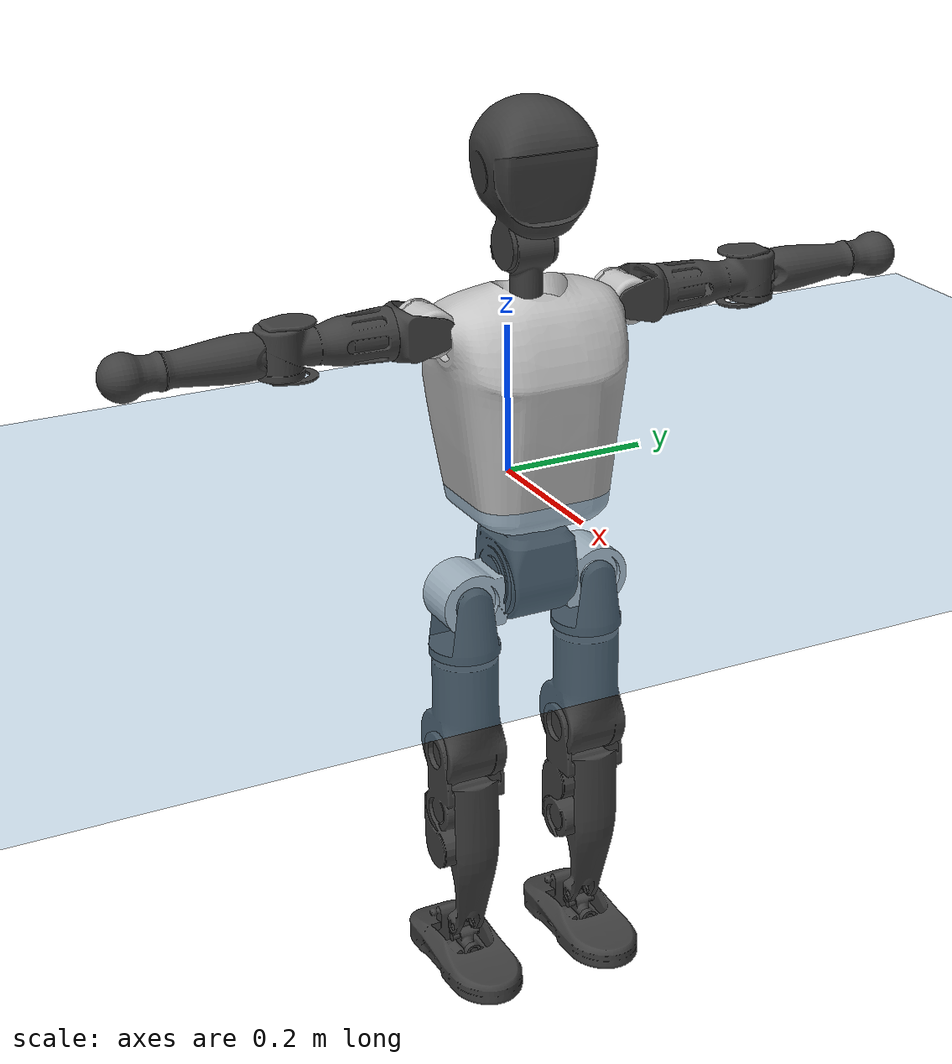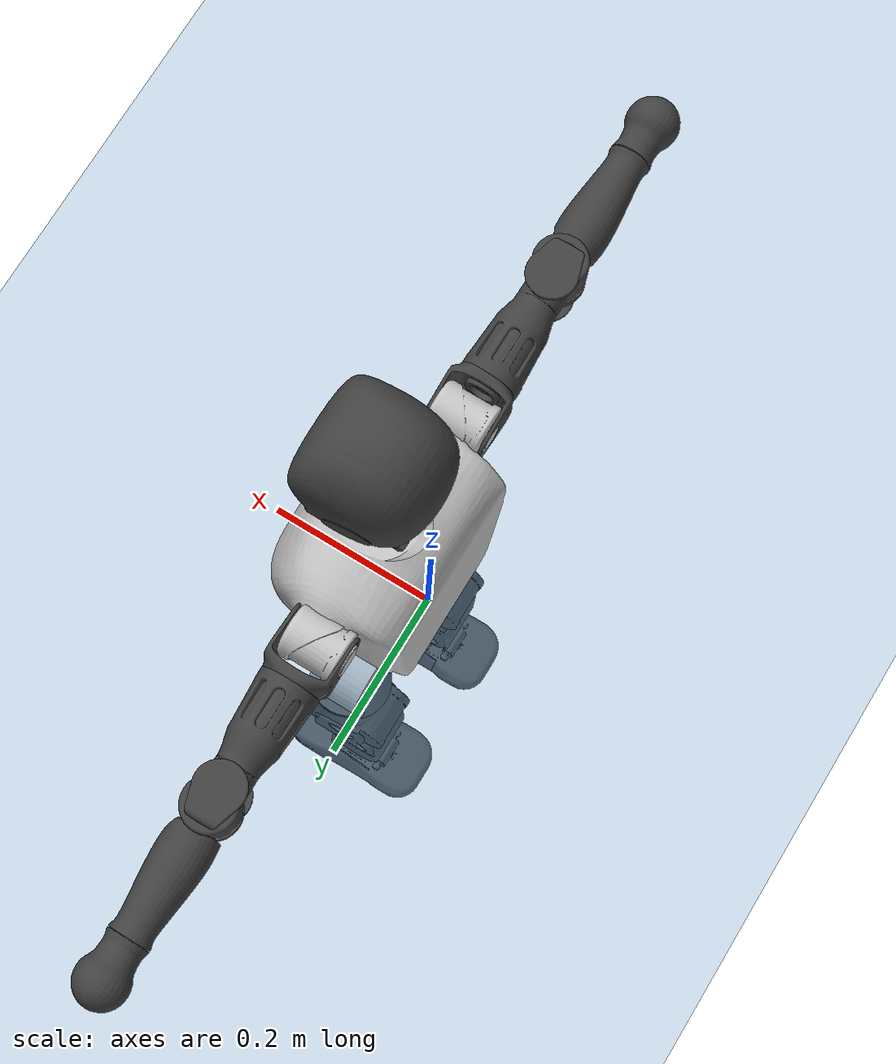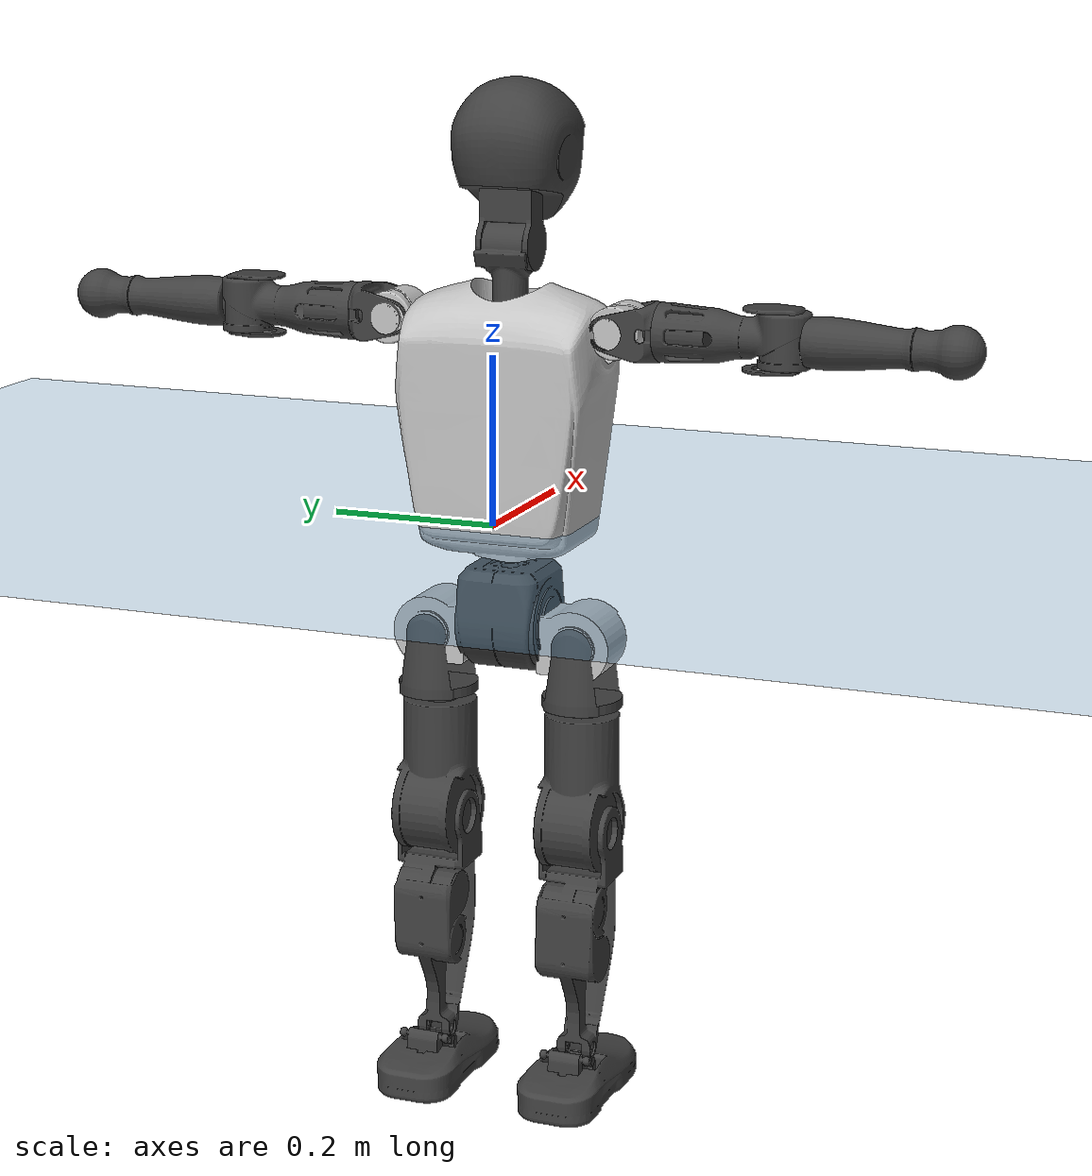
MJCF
<mujoco model="T1">
  <compiler angle="radian" assetdir="assets" balanceinertia="true" inertiafromgeom="false"/>

  <option timestep="0.005" density="1.2" viscosity="2e-05"/>

  <size nkey="1"/>

  <visual>
    <quality shadowsize="8192"/>
    <map shadowclip="0.5"/>
  </visual>

  <default>
    <default class="/">
      <joint armature="0.01" damping="0.01" frictionloss="0.1"/>
      <geom contype="0" conaffinity="0" group="1" solref="-1000 -80"/>
      <site size="0.01 0.005 0.005" group="5"/>
      <general forcelimited="true" biastype="affine" gainprm="25" biasprm="0 -25 -0.6"/>
      <default class="t1">
        <geom rgba="0.25 0.25 0.25 1"/>
        <default class="visual">
          <geom type="mesh" group="2"/>
        </default>
        <default class="collision">
          <geom group="3"/>
        </default>
        <default class="foot">
          <geom size="0.1115 0.05 0.015" type="box" condim="6" group="4" priority="1" solimp="0.015 1 0.015"/>
        </default>
        <default class="reward_collision_sphere">
          <geom group="5" rgba="1 0 0 1"/>
        </default>
      </default>
    </default>
  </default>

  <asset>
    <texture type="skybox" colorspace="auto" name="//unnamed_texture_0" builtin="gradient" rgb1="0.95 0.95 0.95" rgb2="0.95 0.95 0.95" width="100" height="600"/>
    <texture type="2d" colorspace="auto" name="texplane" builtin="checker" rgb1="0.345 0.575 0.748" rgb2="0.345 0.575 0.748" markrgb="1 1 1" width="512" height="512"/>
    <material name="MatPlane" class="/" texture="texplane" texuniform="true" texrepeat="2 2" specular="0.9"/>
    <mesh name="Trunk" class="/" file="Trunk.stl"/>
    <mesh name="H1" class="/" file="H1.stl"/>
    <mesh name="H2" class="/" file="H2.stl"/>
    <mesh name="AL1" class="/" file="AL1.stl"/>
    <mesh name="AL2" class="/" file="AL2.stl"/>
    <mesh name="AL3" class="/" file="AL3.stl"/>
    <mesh name="left_hand_link" class="/" file="left_hand_link.stl"/>
    <mesh name="AR1" class="/" file="AR1.stl"/>
    <mesh name="AR2" class="/" file="AR2.stl"/>
    <mesh name="AR3" class="/" file="AR3.stl"/>
    <mesh name="right_hand_link" class="/" file="right_hand_link.stl"/>
    <mesh name="Waist" class="/" file="Waist.stl"/>
    <mesh name="Hip_Pitch_Left" class="/" file="Hip_Pitch_Left.stl"/>
    <mesh name="Hip_Roll_Left" class="/" file="Hip_Roll_Left.stl"/>
    <mesh name="Hip_Yaw_Left" class="/" file="Hip_Yaw_Left.stl"/>
    <mesh name="Shank_Left" class="/" file="Shank_Left.stl"/>
    <mesh name="Ankle_Cross_Left" class="/" file="Ankle_Cross_Left.stl"/>
    <mesh name="left_foot_link" class="/" file="left_foot_link.stl"/>
    <mesh name="Hip_Pitch_Right" class="/" file="Hip_Pitch_Right.stl"/>
    <mesh name="Hip_Roll_Right" class="/" file="Hip_Roll_Right.stl"/>
    <mesh name="Hip_Yaw_Right" class="/" file="Hip_Yaw_Right.stl"/>
    <mesh name="Shank_Right" class="/" file="Shank_Right.stl"/>
    <mesh name="Ankle_Cross_Right" class="/" file="Ankle_Cross_Right.stl"/>
    <mesh name="right_foot_link" class="/" file="right_foot_link.stl"/>
  </asset>

  <worldbody>
    <geom name="floor" class="/" size="100 100 0.125" type="plane" group="0" material="MatPlane"/>
    <light name="toplight_shadow" class="/" pos="0 0 5" dir="0.0990148 0.0990148 -0.990148" type="directional" ambient="0.04 0.04 0.04" diffuse="0.55 0.55 0.55" specular="0.12 0.12 0.12"/>
    <light name="toplight_fill" class="/" pos="0 0 5" dir="0.0990148 0.0990148 -0.990148" type="directional" castshadow="false" ambient="0.04 0.04 0.04" diffuse="0.3 0.3 0.3" specular="0.08 0.08 0.08"/>
    <body name="trunk" childclass="t1" pos="0.000450975 0.000551744 -0.000829901" quat="1 0.000387841 0.00021159 3.77844e-05">
      <inertial pos="0.0454923 -0.000286621 0.11108" quat="0.999963 -0.00152238 -0.00837493 0.00133398" mass="9.11114" diaginertia="0.0362237 0.0379431 0.0750368"/>
      <joint name="//unnamed_joint_0" type="free" armature="0" damping="0" frictionloss="0"/>
      <geom name="//unnamed_geom_1" class="visual" rgba="0.76 0.76 0.76 1" mesh="Trunk"/>
      <geom name="//unnamed_geom_2" class="collision" size="0.0690271 0.0920362 0.138054" pos="0.0498451 0 0.127475" type="box"/>
      <geom name="//unnamed_geom_3" class="reward_collision_sphere" size="0.105842" pos="0.0498451 0 0.106229"/>
      <geom name="//unnamed_geom_4" class="reward_collision_sphere" size="0.0138054" pos="0.0498451 0.0737834 0"/>
      <geom name="//unnamed_geom_5" class="reward_collision_sphere" size="0.0138054" pos="0.0498451 -0.0737834 0"/>
      <geom name="//unnamed_geom_6" class="reward_collision_sphere" size="0.0138054" pos="0.0498451 0.0928803 0.191213"/>
      <geom name="//unnamed_geom_7" class="reward_collision_sphere" size="0.0138054" pos="0.0498451 -0.0928803 0.191213"/>
      <site name="imu" pos="0.00448287 0.000363788 -0.00118306" size="0.00920362"/>
      <camera name="track" pos="0 -1.73608 0" quat="0.707107 0.707107 0 0" mode="trackcom"/>
      <camera name="ego_camera" pos="0.101352 0 0.446163" quat="-0.5 -0.5 0.5 0.5"/>
      <body name="H1" pos="0.0517056 -0.000616922 0.257733" quat="1 -0.000217713 -3.68739e-05 -0.000359565">
        <inertial pos="-0.00169774 -0.00163961 0.0600876" quat="0.762316 -0.0163129 0.00278484 0.646993" mass="0.349372" diaginertia="9.66644e-05 0.000109653 0.000206303"/>
        <joint name="AAHead_yaw" pos="0 0 0" axis="-0.00013577 -0.000154947 1" range="-1.55258 1.57934" armature="0.00883767" damping="0.00812192" frictionloss="0.0957479"/>
        <geom name="//unnamed_geom_8" class="visual" mesh="H1"/>
        <body name="H2" pos="-0.00101934 -0.000636443 0.0656002" quat="1 -1.83398e-05 -3.10787e-06 -8.72792e-06">
          <inertial pos="0.00570632 0.000123517 0.10477" quat="0.988505 0.106951 -0.0722634 -0.0787175" mass="0.496131" diaginertia="0.000808925 0.000946675 0.0023457"/>
          <joint name="Head_pitch" pos="0 0 0" axis="-0.000651255 -0.999997 0.00244896" range="-1.23024 0.33487" armature="0.00942979" damping="0.00585833" frictionloss="0.0933032"/>
          <geom name="//unnamed_geom_9" class="visual" mesh="H2"/>
          <geom name="//unnamed_geom_10" class="collision" size="0.0736289" pos="0.00830751 0 0.116852"/>
          <geom name="//unnamed_geom_11" class="reward_collision_sphere" size="0.0828325" pos="0.016615 0 0.106229"/>
        </body>
      </body>
      <body name="AL1" pos="0.0484108 0.0934598 0.233243" quat="1 7.32898e-05 0.000596744 -0.000131373">
        <inertial pos="-0.00048766 0.0391461 -0.000579928" quat="0.504446 0.495173 -0.503841 0.49647" mass="0.418618" diaginertia="0.000548611 0.000647114 0.00039893"/>
        <joint name="Left_Shoulder_Pitch" pos="0 0 0" axis="-0.000897807 0.999999 0.000608691" range="-3.30853 1.2275" armature="0.00903216" damping="0.00506976" frictionloss="0.0931119"/>
        <geom name="//unnamed_geom_12" class="visual" rgba="0.76 0.76 0.76 1" mesh="AL1"/>
        <body name="AL2" pos="0.000875857 0.0419521 0.00069225" quat="1 -0.000130125 0.000420743 0.000168905">
          <inertial pos="0.00287147 0.0320061 -0.000179198" quat="0.488045 0.511711 -0.487945 0.511736" mass="0.125767" diaginertia="0.000158777 0.000171807 0.000240536"/>
          <joint name="Left_Shoulder_Roll" pos="0 0 0" axis="-1 -2.59943e-05 -0.000115506" range="-1.57189 1.73438" armature="0.00940646" damping="0.00322337" frictionloss="0.0919725"/>
          <geom name="//unnamed_geom_13" class="visual" mesh="AL2"/>
          <body name="AL3" pos="0.000107449 0.0536782 -0.000167254" quat="1 7.40482e-06 -1.60866e-05 -1.25131e-05">
            <inertial pos="-0.000207708 0.0744613 2.08507e-07" quat="0.709201 0.705004 0.000628137 0.00174416" mass="0.812486" diaginertia="0.00514592 0.00634579 0.000841464"/>
            <joint name="Left_Elbow_Pitch" pos="0 0 0" axis="0.00140681 -0.999994 -0.00309716" range="-2.25569 2.2584" armature="0.00928516" damping="0.00372767" frictionloss="0.0887914"/>
            <geom name="//unnamed_geom_14" class="visual" mesh="AL3"/>
            <geom name="//unnamed_geom_15" class="collision" size="0.0276108 0.0690271" pos="0 0.043402 0" quat="0.707105 0.707108 0 0" type="cylinder"/>
            <geom name="//unnamed_geom_16" class="reward_collision_sphere" size="0.033133"/>
            <body name="left_hand_link" pos="-0.000327114 0.128217 0.000384674" quat="1 0.000154732 -0.000432357 0.000111871">
              <inertial pos="-6.68753e-05 0.0954015 0.000926482" quat="0.708025 0.706187 -0.000269333 0.000620774" mass="0.252185" diaginertia="0.00319869 0.00398538 0.000292312"/>
              <joint name="Left_Elbow_Yaw" pos="0 0 0" axis="0.000527949 -0.00206353 0.999998" range="-2.44352 0.00303289" armature="0.00912006" damping="0.0110164" frictionloss="0.0879362"/>
              <geom name="//unnamed_geom_17" class="visual" mesh="left_hand_link"/>
              <geom name="//unnamed_geom_18" class="collision" size="0.0276108 0.0805316" pos="0 0.112845 0" quat="0.707105 0.707108 0 0" type="cylinder"/>
              <geom name="//unnamed_geom_19" class="reward_collision_sphere" size="0.0460181"/>
              <geom name="//unnamed_geom_20" class="reward_collision_sphere" size="0.0322127" pos="0 0.0954844 0"/>
              <geom name="//unnamed_geom_21" class="reward_collision_sphere" size="0.0322127" pos="0 0.186629 0"/>
            </body>
          </body>
        </body>
      </body>
      <body name="AR1" pos="0.0469574 -0.0918731 0.23247" quat="1 -6.83399e-05 0.000529815 -0.000266909">
        <inertial pos="-0.00129976 -0.0393375 3.35779e-05" quat="0.504392 0.49638 -0.503421 0.495745" mass="0.413096" diaginertia="0.000548535 0.000639301 0.000394894"/>
        <joint name="Right_Shoulder_Pitch" pos="0 0 0" axis="0.00158548 -0.999998 -0.00141625" stiffness="0.000960205" range="-1.23109 3.3083" armature="0.00963005" damping="0.00592202" frictionloss="0.094254"/>
        <geom name="//unnamed_geom_22" class="visual" rgba="0.76 0.76 0.76 1" mesh="AR1"/>
        <body name="AR2" pos="-0.00105708 -0.0405787 3.17838e-05" quat="1 2.21204e-05 -3.21747e-06 -9.2361e-07">
          <inertial pos="0.00297074 -0.0329965 0.000205203" quat="0.515111 0.485924 -0.510058 0.488241" mass="0.123876" diaginertia="0.000160888 0.000170115 0.000240565"/>
          <joint name="Right_Shoulder_Roll" pos="0 0 0" axis="-0.999989 0.00350833 -0.00310391" range="-1.74406 1.56992" armature="0.00920929" damping="0.00549989" frictionloss="0.0919431"/>
          <geom name="//unnamed_geom_23" class="visual" mesh="AR2"/>
          <body name="AR3" pos="-0.00114404 -0.0527234 0.000882904" quat="1 0.000104766 -3.5378e-05 6.3426e-05">
            <inertial pos="-0.000677623 -0.0733171 -0.00020895" quat="0.70766 0.706554 0.00024695 0.000122643" mass="0.791302" diaginertia="0.00508582 0.00623457 0.000829764"/>
            <joint name="Right_Elbow_Pitch" pos="0 0 0" axis="0.00060836 0.999999 -0.0015285" range="-2.26743 2.2705" armature="0.00927866" damping="0.00876651" frictionloss="0.091781"/>
            <geom name="//unnamed_geom_24" class="visual" mesh="AR3"/>
            <geom name="//unnamed_geom_25" class="collision" size="0.0276108 0.0690271" pos="0 -0.043402 0" quat="0.707105 0.707108 0 0" type="cylinder"/>
            <geom name="//unnamed_geom_26" class="reward_collision_sphere" size="0.033133"/>
            <body name="right_hand_link" pos="-0.000243301 -0.127588 -0.000460766" quat="1 0.000312033 -5.17116e-05 5.93411e-05">
              <inertial pos="-0.000902613 -0.0947519 0.000339061" quat="0.705962 0.708246 -0.00238983 -8.25533e-05" mass="0.25816" diaginertia="0.00322279 0.00400479 0.00028721"/>
              <joint name="Right_Elbow_Yaw" pos="0 0 0" axis="0.0029497 0.00422151 0.999987" range="-0.00251197 2.44932" armature="0.00898609" damping="0.00814247" frictionloss="0.0931662"/>
              <geom name="//unnamed_geom_27" class="visual" mesh="right_hand_link"/>
              <geom name="//unnamed_geom_28" class="collision" size="0.0276108 0.0805316" pos="0 -0.112845 0" quat="0.707105 0.707108 0 0" type="cylinder"/>
              <geom name="//unnamed_geom_29" class="reward_collision_sphere" size="0.0460181"/>
              <geom name="//unnamed_geom_30" class="reward_collision_sphere" size="0.0322127" pos="0 -0.0954844 0"/>
              <geom name="//unnamed_geom_31" class="reward_collision_sphere" size="0.0322127" pos="0 -0.186629 0"/>
            </body>
          </body>
        </body>
      </body>
      <body name="Waist" pos="0.0517272 -0.000927158 -0.122092" quat="1 0.000315009 0.000214448 0.000188411">
        <inertial pos="0.00211473 -0.000583919 0.00696677" quat="0.984034 0.00159938 -0.177872 0.0059198" mass="2.03681" diaginertia="0.00214007 0.00261835 0.00642396"/>
        <joint name="Waist" pos="0 0 0" axis="0.000721132 -0.000720722 0.999999" range="-1.56984 1.57576" armature="0.00908834" damping="0.0111611" frictionloss="0.0936883"/>
        <geom name="//unnamed_geom_32" class="visual" mesh="Waist"/>
        <body name="Hip_Pitch_Left" pos="-0.000281735 0.091969 0.000637334" quat="1 -0.000105991 -3.31841e-05 0.000130465">
          <inertial pos="0.00139968 -0.00725809 -0.0194614" quat="0.975015 0.221488 0.0169961 0.000713885" mass="0.787886" diaginertia="0.000712014 0.000721235 0.00168871"/>
          <joint name="Left_Hip_Pitch" pos="0 0 0" axis="2.254e-05 1 -1.00288e-05" stiffness="0.000419537" range="-1.80202 1.57178" armature="0.00927487" damping="0.00569996" frictionloss="0.0899313"/>
          <geom name="//unnamed_geom_33" class="visual" rgba="0.76 0.76 0.76 1" mesh="Hip_Pitch_Left"/>
          <body name="Hip_Roll_Left" pos="-4.23212e-05 0.000130343 -0.0214584" quat="1 0.000156428 -0.000250811 -0.000307236">
            <inertial pos="0.00198818 -0.000428335 -0.0571052" quat="0.704861 -0.00683391 -0.00360518 0.709303" mass="0.296624" diaginertia="0.000685498 0.000743787 0.000686683"/>
            <joint name="Left_Hip_Roll" pos="0 0 0" axis="-0.999996 0.000867947 0.00271871" stiffness="0.00201133" range="-1.57093 0.190919" armature="0.00908483" damping="0.0108796" frictionloss="0.0957714"/>
            <geom name="//unnamed_geom_34" class="visual" mesh="Hip_Roll_Left"/>
            <geom name="//unnamed_geom_35" class="reward_collision_sphere" size="0.0506199"/>
            <body name="Hip_Yaw_Left" pos="0.00174787 -0.000761921 -0.0880671" quat="1 2.24671e-05 -1.26554e-05 8.12508e-05">
              <inertial pos="-0.00560333 -0.000569575 -0.0950824" quat="0.696991 -0.033201 -0.0298913 0.715687" mass="1.71728" diaginertia="0.0102683 0.012656 0.00354941"/>
              <joint name="Left_Hip_Yaw" pos="0 0 0" axis="0.00219427 0.000674938 -0.999997" stiffness="0.00215486" range="-1.01893 1.01867" armature="0.00929941" damping="0.00848565" frictionloss="0.0923759"/>
              <geom name="//unnamed_geom_36" class="visual" mesh="Hip_Yaw_Left"/>
              <geom name="//unnamed_geom_37" class="collision" size="0.0460181 0.0736289" type="cylinder"/>
              <body name="Shank_Left" pos="-0.011804 0.000248535 -0.142581" quat="1 0.000103219 -7.98125e-05 -4.65984e-05">
                <inertial pos="-0.00458858 0.000134101 -0.132106" quat="0.997528 0.00212144 -0.0247161 0.0657409" mass="1.3545" diaginertia="0.0139112 0.0170234 0.00254509"/>
                <joint name="Left_Knee_Pitch" pos="0 0 0" axis="0.000513968 1 0.000713851" stiffness="0.000308863" range="-0.0177344 2.3426" armature="0.00917609" damping="0.0046826" frictionloss="0.0969621"/>
                <geom name="//unnamed_geom_38" class="visual" mesh="Shank_Left"/>
                <geom name="//unnamed_geom_39" class="collision" size="0.0460181 0.0690271" pos="0 0 -0.127475" type="cylinder"/>
                <geom name="//unnamed_geom_40" class="reward_collision_sphere" size="0.0598235"/>
                <body name="Ankle_Cross_Left" pos="-3.82553e-05 0.000284534 -0.296765" quat="1 4.39717e-05 8.66588e-05 7.58647e-05">
                  <inertial pos="-0.00264935 0.000371199 -0.00940367" quat="0.443455 0.551002 0.549431 0.444827" mass="0.056832" diaginertia="1.12524e-05 1.23963e-05 1.5129e-05"/>
                  <joint name="Left_Ankle_Pitch" pos="0 0 0" axis="0.0023516 0.999995 -0.00200509" range="-0.863989 0.341213" armature="0.00921305" damping="0.00628553" frictionloss="0.0952818"/>
                  <geom name="//unnamed_geom_41" class="visual" mesh="Ankle_Cross_Left"/>
                  <body name="left_foot_link" pos="-0.000461776 -0.000921809 -0.0128588" quat="1 0.000323425 3.79529e-05 0.000156475">
                    <inertial pos="-9.5023e-05 0.000192145 -0.00930157" quat="-0.00185831 0.622052 9.02263e-05 0.782973" mass="0.530607" diaginertia="0.00105882 0.00116513 0.00295759"/>
                    <joint name="Left_Ankle_Roll" pos="0 0 0" axis="-0.999996 0.00292212 -0.00025247" range="-0.446357 0.456794" armature="0.00920096" damping="0.0104846" frictionloss="0.0908934"/>
                    <geom name="//unnamed_geom_42" class="visual" mesh="left_foot_link"/>
                    <geom name="left_foot" class="foot" size="0.101948 0.0468355 0.013658" pos="0.00830751 0 -0.0159344"/>
                    <geom name="//unnamed_geom_44" class="reward_collision_sphere" size="0.0478588" pos="0.00830751 0 -0.0159344"/>
                    <geom name="//unnamed_geom_45" class="reward_collision_sphere" size="0.0276108" pos="0.0789214 -0.0199649 -0.0159344"/>
                    <geom name="//unnamed_geom_46" class="reward_collision_sphere" size="0.0276108" pos="-0.0581526 -0.0199649 -0.0159344"/>
                    <site name="left_foot" class="foot" pos="0.00830751 0 -0.0159344" size="0.00920362"/>
                  </body>
                </body>
              </body>
            </body>
          </body>
        </body>
        <body name="Hip_Pitch_Right" pos="0.000161272 -0.0915672 -0.000360836" quat="1 -0.000127961 -7.60672e-05 9.13403e-05">
          <inertial pos="0.0013136 0.00637428 -0.0194529" quat="0.973611 -0.227626 0.0159184 -0.00373997" mass="0.787775" diaginertia="0.000707723 0.000711656 0.00166146"/>
          <joint name="Right_Hip_Pitch" pos="0 0 0" axis="0.000764229 -0.999999 0.00107797" range="-1.57284 1.8014" armature="0.00931159" damping="0.00954239" frictionloss="0.0884561"/>
          <geom name="//unnamed_geom_47" class="visual" rgba="0.76 0.76 0.76 1" mesh="Hip_Pitch_Right"/>
          <body name="Hip_Roll_Right" pos="-0.000424575 -0.000528383 -0.0204868" quat="1 7.5465e-05 -0.000251545 7.35679e-05">
            <inertial pos="0.00152125 0.000698868 -0.0564273" quat="0.707281 -0.0029976 -0.00340793 0.706918" mass="0.300181" diaginertia="0.000691029 0.000750294 0.000702074"/>
            <joint name="Right_Hip_Roll" pos="0 0 0" axis="-0.999998 0.00161928 0.00152654" stiffness="0.00087984" range="-0.183448 1.55982" armature="0.00880419" damping="0.00651091" frictionloss="0.0957457"/>
            <geom name="//unnamed_geom_48" class="visual" mesh="Hip_Roll_Right"/>
            <geom name="//unnamed_geom_49" class="reward_collision_sphere" size="0.0506199"/>
            <body name="Hip_Yaw_Right" pos="0.000710964 6.88249e-05 -0.0873175" quat="1 -3.6375e-05 -6.06323e-05 3.74713e-05">
              <inertial pos="-0.00585725 -0.000169516 -0.0944585" quat="0.714213 -0.0339532 -0.034118 0.698271" mass="1.70051" diaginertia="0.0102811 0.0124237 0.00352356"/>
              <joint name="Right_Hip_Yaw" pos="0 0 0" axis="0.00116706 -0.00199349 -0.999997" range="-1.01396 1.00066" armature="0.00893148" damping="0.0118147" frictionloss="0.0897653"/>
              <geom name="//unnamed_geom_50" class="visual" mesh="Hip_Yaw_Right"/>
              <geom name="//unnamed_geom_51" class="collision" size="0.0460181 0.0736289" type="cylinder"/>
              <body name="Shank_Right" pos="-0.0109387 -8.78969e-05 -0.141931" quat="1 -3.85249e-08 4.75071e-08 3.5627e-08">
                <inertial pos="-0.00474034 0.00085577 -0.130352" quat="0.999316 0.00274684 -0.0220023 -0.0295839" mass="1.40594" diaginertia="0.0141973 0.0174044 0.00270763"/>
                <joint name="Right_Knee_Pitch" pos="0 0 0" axis="0.002319 -0.999992 -0.00321335" range="-2.34052 -0.00563014" armature="0.00937509" damping="0.00733384" frictionloss="0.0888015"/>
                <geom name="//unnamed_geom_52" class="visual" mesh="Shank_Right"/>
                <geom name="//unnamed_geom_53" class="collision" size="0.0460181 0.0690271" pos="0 0 -0.127475" type="cylinder"/>
                <geom name="//unnamed_geom_54" class="reward_collision_sphere" size="0.0598235"/>
                <body name="Ankle_Cross_Right" pos="-0.000611835 -0.000800842 -0.297133" quat="1 -5.58912e-05 0.000189224 8.35081e-05">
                  <inertial pos="-0.00297929 -0.000562849 -0.00845913" quat="0.446484 0.54902 0.550374 0.443077" mass="0.0573758" diaginertia="1.13667e-05 1.26738e-05 1.55087e-05"/>
                  <joint name="Right_Ankle_Pitch" pos="0 0 0" axis="0.00489374 -0.999987 0.0013741" stiffness="0.001134" range="-0.347245 0.863371" armature="0.00939604" damping="0.00659311" frictionloss="0.0925458"/>
                  <geom name="//unnamed_geom_55" class="visual" mesh="Ankle_Cross_Right"/>
                  <body name="right_foot_link" pos="1.3645e-05 -0.000410596 -0.013512" quat="1 4.97493e-05 -9.05673e-05 -7.99347e-05">
                    <inertial pos="0.000482321 -0.000137279 -0.0105706" quat="-0.00183976 0.619463 0.00228854 0.78502" mass="0.532307" diaginertia="0.00107837 0.00117839 0.00298342"/>
                    <joint name="Right_Ankle_Roll" pos="0 0 0" axis="-1 0.000119549 8.49294e-05" range="-0.441293 0.444534" armature="0.00912264" damping="0.00847297" frictionloss="0.0909927"/>
                    <geom name="//unnamed_geom_56" class="visual" mesh="right_foot_link"/>
                    <geom name="right_foot" class="foot" size="0.0998878 0.0463063 0.0143875" pos="0.00830751 0 -0.0159344"/>
                    <geom name="//unnamed_geom_58" class="reward_collision_sphere" size="0.0368145"/>
                    <geom name="//unnamed_geom_59" class="reward_collision_sphere" size="0.0276108" pos="0.00830751 0 -0.0159344"/>
                    <geom name="//unnamed_geom_60" class="reward_collision_sphere" size="0.0276108" pos="0.0789214 0.0199649 -0.0159344"/>
                    <geom name="//unnamed_geom_61" class="reward_collision_sphere" size="0.0276108" pos="-0.0581526 0.0199649 -0.0159344"/>
                    <site name="right_foot" class="foot" pos="0.00830751 0 -0.0159344" size="0.00920362"/>
                  </body>
                </body>
              </body>
            </body>
          </body>
        </body>
      </body>
    </body>
  </worldbody>

  <contact>
    <pair class="/" geom1="floor" geom2="left_foot" name="//unnamed_contact_0"/>
    <pair class="/" geom1="floor" geom2="right_foot" name="//unnamed_contact_1"/>
  </contact>

  <actuator>
    <general name="AAHead_yaw" class="/" joint="AAHead_yaw" forcerange="-6.48762 6.48762" gainprm="22.8764" biasprm="0 -22.8764 -0.549695"/>
    <general name="Head_pitch" class="/" joint="Head_pitch" forcerange="-6.37733 6.37733" gainprm="22.8764" biasprm="0 -22.8764 -0.549695"/>
    <general name="Left_Shoulder_Pitch" class="/" joint="Left_Shoulder_Pitch" forcerange="-16.5429 16.5429" gainprm="22.8764" biasprm="0 -22.8764 -0.549695"/>
    <general name="Left_Shoulder_Roll" class="/" joint="Left_Shoulder_Roll" forcerange="-16.3952 16.3952" gainprm="22.8764" biasprm="0 -22.8764 -0.549695"/>
    <general name="Left_Elbow_Pitch" class="/" joint="Left_Elbow_Pitch" forcerange="-16.2489 16.2489" gainprm="22.8764" biasprm="0 -22.8764 -0.549695"/>
    <general name="Left_Elbow_Yaw" class="/" joint="Left_Elbow_Yaw" forcerange="-17.1337 17.1337" gainprm="22.8764" biasprm="0 -22.8764 -0.549695"/>
    <general name="Right_Shoulder_Pitch" class="/" joint="Right_Shoulder_Pitch" forcerange="-16.6862 16.6862" gainprm="22.8764" biasprm="0 -22.8764 -0.549695"/>
    <general name="Right_Shoulder_Roll" class="/" joint="Right_Shoulder_Roll" forcerange="-16.1803 16.1803" gainprm="22.8764" biasprm="0 -22.8764 -0.549695"/>
    <general name="Right_Elbow_Pitch" class="/" joint="Right_Elbow_Pitch" forcerange="-16.0569 16.0569" gainprm="22.8764" biasprm="0 -22.8764 -0.549695"/>
    <general name="Right_Elbow_Yaw" class="/" joint="Right_Elbow_Yaw" forcerange="-16.9014 16.9014" gainprm="22.8764" biasprm="0 -22.8764 -0.549695"/>
    <general name="Waist" class="/" joint="Waist" forcerange="-27.7778 27.7778" gainprm="22.8764" biasprm="0 -22.8764 -0.549695"/>
    <general name="Left_Hip_Pitch" class="/" joint="Left_Hip_Pitch" forcerange="-39.9751 39.9751" gainprm="22.8764" biasprm="0 -22.8764 -0.549695"/>
    <general name="Left_Hip_Roll" class="/" joint="Left_Hip_Roll" forcerange="-27.3501 27.3501" gainprm="22.8764" biasprm="0 -22.8764 -0.549695"/>
    <general name="Left_Hip_Yaw" class="/" joint="Left_Hip_Yaw" forcerange="-27.6611 27.6611" gainprm="22.8764" biasprm="0 -22.8764 -0.549695"/>
    <general name="Left_Knee_Pitch" class="/" joint="Left_Knee_Pitch" forcerange="-54.9363 54.9363" gainprm="22.8764" biasprm="0 -22.8764 -0.549695"/>
    <general name="Left_Ankle_Pitch" class="/" joint="Left_Ankle_Pitch" forcerange="-18.6117 18.6117" gainprm="22.8764" biasprm="0 -22.8764 -0.549695"/>
    <general name="Left_Ankle_Roll" class="/" joint="Left_Ankle_Roll" forcerange="-13.7877 13.7877" gainprm="22.8764" biasprm="0 -22.8764 -0.549695"/>
    <general name="Right_Hip_Pitch" class="/" joint="Right_Hip_Pitch" forcerange="-41.9327 41.9327" gainprm="22.8764" biasprm="0 -22.8764 -0.549695"/>
    <general name="Right_Hip_Roll" class="/" joint="Right_Hip_Roll" forcerange="-27.6745 27.6745" gainprm="22.8764" biasprm="0 -22.8764 -0.549695"/>
    <general name="Right_Hip_Yaw" class="/" joint="Right_Hip_Yaw" forcerange="-27.3361 27.3361" gainprm="22.8764" biasprm="0 -22.8764 -0.549695"/>
    <general name="Right_Knee_Pitch" class="/" joint="Right_Knee_Pitch" forcerange="-56.7674 56.7674" gainprm="22.8764" biasprm="0 -22.8764 -0.549695"/>
    <general name="Right_Ankle_Pitch" class="/" joint="Right_Ankle_Pitch" forcerange="-18.8813 18.8813" gainprm="22.8764" biasprm="0 -22.8764 -0.549695"/>
    <general name="Right_Ankle_Roll" class="/" joint="Right_Ankle_Roll" forcerange="-13.3455 13.3455" gainprm="22.8764" biasprm="0 -22.8764 -0.549695"/>
  </actuator>

  <sensor>
    <gyro site="imu" name="imu_angular_velocity"/>
    <velocimeter site="imu" name="imu_linear_velocity"/>
    <framelinvel objtype="site" objname="left_foot" name="left_foot_global_linear_velocity"/>
    <framelinvel objtype="site" objname="right_foot" name="right_foot_global_linear_velocity"/>
  </sensor>

  <keyframe>
    <key name="home" qpos="0 0 0.6385 1 0 0 0 0 0 0 1.4 0 -0.4 0 -1.4 0 0.4 0 -0.4 0 0 0.8 -0.4 0 0.4 0 0 -0.8 0.4 0"/>
  </keyframe>
</mujoco>
